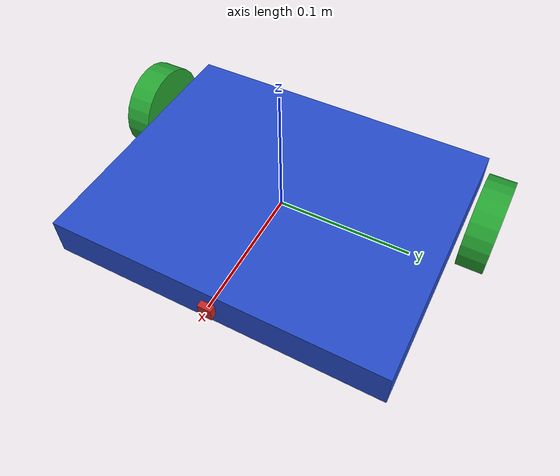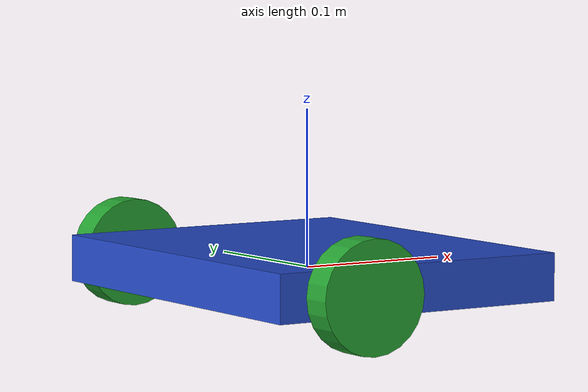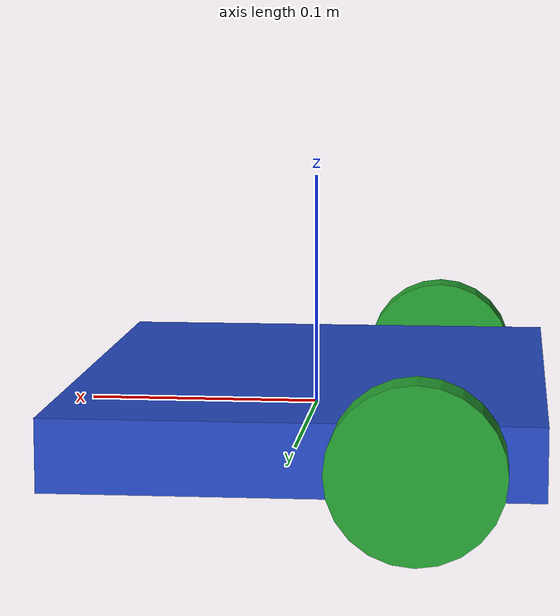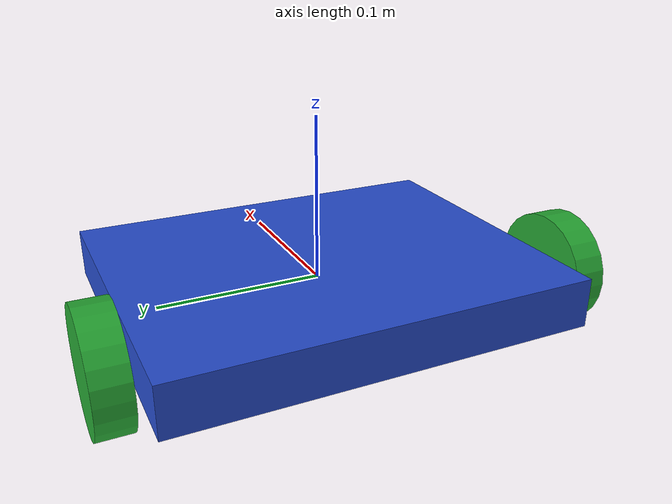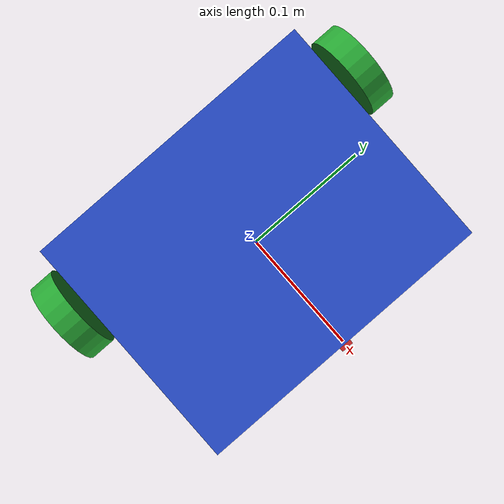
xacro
<?xml version='1.0'?>

<robot name="marsbot" xmlns:xacro="http://www.ros.org/wiki/xacro">

  <link name="robot_footprint"></link>

  <xacro:include filename="$(find marsbot)/urdf/marsbot.gazebo" />

  <joint name="robot_footprint_joint" type="fixed">
    <origin xyz="0 0 0" rpy="0 0 0" />
    <parent link="robot_footprint"/>
    <child link="chassis" />
  </joint>

  <link name='chassis'>
    <pose>0 0 0.1 0 0 0</pose>

    <inertial>
      <mass value="15.0"/>
      <origin xyz="0.0 0 0" rpy=" 0 0 0"/>
      <inertia
          ixx="0.1" ixy="0" ixz="0"
          iyy="0.1" iyz="0"
          izz="0.1"
      />
    </inertial>

    <collision name='collision'>
      <origin xyz="0 0 0" rpy=" 0 0 0"/>
      <geometry>
        <box size=".2 .25 .03"/>
      </geometry>
    </collision>

    <visual name='chassis_visual'>
      <origin xyz="0 0 0" rpy=" 0 0 0"/>
      <geometry>
        <box size=".2 .25 .03"/>
      </geometry>
    </visual>

	<!--caster wheel-->
    <collision name='front_caster_collision'>
      <origin xyz="0.07 0 -0.011" rpy=" 0 0 0"/>
      <geometry>
        <sphere radius="0.025"/>
      </geometry>
    </collision>

    <visual name='front_caster_visual'>
      <origin xyz="0.07 0 -0.011" rpy=" 0 0 0"/>
      <geometry>
        <sphere radius="0.025"/>
      </geometry>
    </visual>

  </link>
	<gazebo reference="chassis">
    <material>Gazebo/Blue</material>
  </gazebo>

  <!--Left wheel-->
  <link name="left_wheel">
  	<inertial>
      <mass value="5.0"/>
      <origin xyz="0.0 0 0" rpy=" 0 1.5707 1.5707"/>
      <inertia
          ixx="0.1" ixy="0" ixz="0"
          iyy="0.1" iyz="0"
          izz="0.1"
      />
    </inertial>

    <collision name='collision'>
      <origin xyz="0 0 0" rpy=" 0 1.5707 1.5707"/>
      <geometry>
        <cylinder radius="0.035" length="0.02"/>
      </geometry>
    </collision>

    <visual name='left_wheel_visual'>
      <origin xyz="0 0 0" rpy=" 0 1.5707 1.5707"/>
      <geometry>
        <cylinder radius="0.035" length="0.02"/>
      </geometry>
    </visual>

  </link>
	<gazebo reference="left_wheel">
    <material>Gazebo/Green</material>
  </gazebo>

  <!--Right wheel-->
  <link name="right_wheel">
  	<inertial>
      <mass value="5.0"/>
      <origin xyz="0.0 0 0" rpy=" 0 1.5707 -1.5707"/>
      <inertia
          ixx="0.1" ixy="0" ixz="0"
          iyy="0.1" iyz="0"
          izz="0.1"
      />
    </inertial>

    <collision name='collision'>
      <origin xyz="0 0 0" rpy=" 0 1.5707 -1.5707"/>
      <geometry>
        <cylinder radius="0.035" length="0.02"/>
      </geometry>
    </collision>

    <visual name='right_wheel_visual'>
      <origin xyz="0 0 0" rpy=" 0 1.5707 -1.5707"/>
      <geometry>
        <cylinder radius="0.035" length="0.02"/>
      </geometry>
    </visual>

  </link>
	<gazebo reference="right_wheel">
    <material>Gazebo/Green</material>
  </gazebo>

	<!--Joints-->

	<!--Left wheel Joint-->
  <joint type="continuous" name="left_wheel_hinge">
    <origin xyz="-0.05 0.14 0" rpy="0 0 0"/>
    <child link="left_wheel"/>
    <parent link="chassis"/>
    <axis xyz="0 1 0" rpy="0 0 0"/>
    <limit effort="10000" velocity="1000"/>
    <dynamics damping="1.0" friction="1.0"/>
  </joint>

  <!--Right wheel Joint-->
  <joint type="continuous" name="right_wheel_hinge">
    <origin xyz="-0.05 -0.14 0" rpy="0 0 0"/>
    <child link="right_wheel"/>
    <parent link="chassis"/>
    <axis xyz="0 1 0" rpy="0 0 0"/>
    <limit effort="10000" velocity="1000"/>
    <dynamics damping="1.0" friction="1.0"/>
  </joint>

	<!--Sensor Links-->

	<!--Camera Link-->
  <link name="camera">
  	<inertial>
      <mass value="0.1"/>
      <origin xyz="0.0 0 0" rpy=" 0 0 0"/>
      <inertia
          ixx="1e-6" ixy="0" ixz="0"
          iyy="1e-6" iyz="0"
          izz="1e-6"
      />
    </inertial>

    <collision name='collision'>
      <origin xyz="0 0 0" rpy=" 0 0 0"/>
      <geometry>
        <box size="0.01 0.01 0.01"/>
      </geometry>
    </collision>

    <visual name='camera_visual'>
      <origin xyz="0 0 0" rpy=" 0 0 0"/>
      <geometry>
        <box size="0.01 0.01 0.01"/>
      </geometry>
    </visual>

  </link>
	<gazebo reference="camera">
    <material>Gazebo/Red</material>
  </gazebo>

	<!--Sensor Joints-->
	<!--Camera Joint-->
	<joint type="fixed" name="camera_hinge">
    <origin xyz="0.1 0 0" rpy="0 0 0"/>
    <child link="camera"/>
    <parent link="chassis"/>
    <axis xyz="0 1 0" rpy="0 0 0"/>
    <limit effort="10000" velocity="1000"/>
    <dynamics damping="1.0" friction="1.0"/>
  </joint>

</robot>
